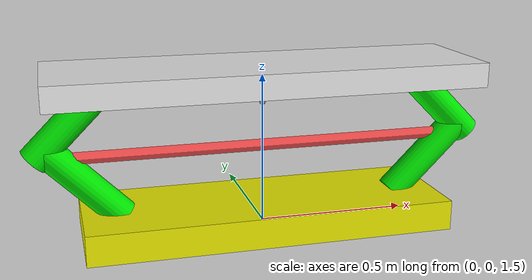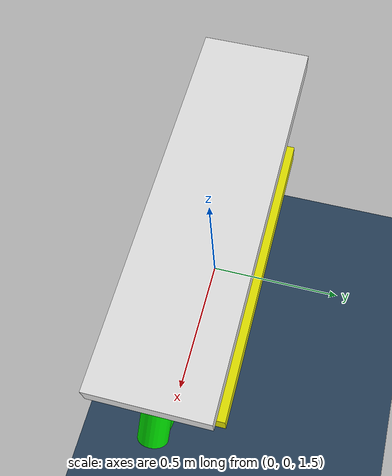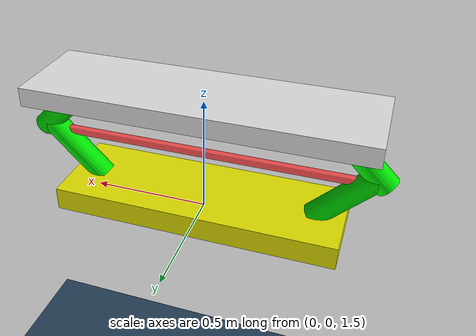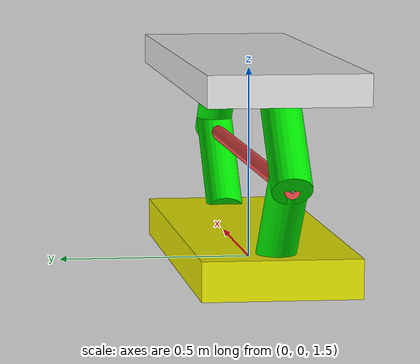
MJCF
<mujoco model="cassie scene">

    <include file="hopper2.xml"/>

    <statistic center="0 0 0.55" extent="1.1"/>

    <visual>
      <headlight diffuse="0.6 0.6 0.6" ambient="0.3 0.3 0.3" specular="0 0 0"/>
      <rgba haze="0.15 0.25 0.35 1"/>
      <global azimuth="150" elevation="-20"/>
    </visual>

    <asset>
      <texture type="skybox" builtin="gradient" rgb1="0.3 0.5 0.7" rgb2="0 0 0" width="512" height="3072"/>
      <texture type="2d" name="groundplane" builtin="checker" mark="edge" rgb1="0.2 0.3 0.4" rgb2="0.1 0.2 0.3"
        markrgb="0.8 0.8 0.8" width="300" height="300"/>
      <material name="groundplane" texture="groundplane" texuniform="true" texrepeat="5 5" reflectance="0.2"/>
    </asset>

    <worldbody>
      <light pos="0 0 3" dir="0 0 -1" directional="false"/>
      <geom name="floor" size="0 0 .125" type="plane" material="groundplane" conaffinity="15" condim="3"/>
    </worldbody>

  </mujoco>

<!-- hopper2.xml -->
<mujoco>
	<!-- 根据dsh提供的参数建模 -->
	<option timestep="0.001" integrator="RK4" gravity="0 0 -10">
		<flag sensornoise="enable" contact="enable" energy="enable" />
	</option>

	<statistic center="0 0 0.55" extent="1.1" />

	<visual>
		<headlight diffuse="0.6 0.6 0.6" ambient="0.3 0.3 0.3" specular="0 0 0" />
		<rgba haze="0.15 0.25 0.35 1" />
		<global azimuth="150" elevation="-20" />
	</visual>

	<worldbody>
		<light diffuse=".5 .5 .5" pos="0 0 3" dir="0 0 -1" />

		<body name="hopper" pos="0 0 2">
			<!-- 约束跳跃机器人只在x和z方向自由 -->
			<joint name="x" type="slide" pos="0 0 0" axis="1 0 0" />
			<joint name="z" type="slide" pos="0 0 0" axis="0 0 1" />
			<geom type="box" size=".7 .2 .04" rgba=".9 .9 .9 1" mass="0.5" />
			<site name="imu" size="0.01" pos="0 0 -0.09" />
			<body name="thigh_left" pos="-0.6179 0 -0.1179" euler="0 45 0">
				<joint name="hip_left" type="hinge" pos="0 0 0.1667" axis="0 -1 0" range="-45 45" limited="true"/>
				<geom type="cylinder" size=".05 .1667" rgba="0 .9 0 1" mass="0.5"/>
				<site name="s_left" pos="0 0 -0.1667" />
				<body name="leg_left" pos="0.1667 0 -0.1179" euler="0 -90 0">
					<joint name="knee_left" type="hinge" pos="0 0 0.1667" axis="0 -1 0" range="-45 45" limited="true"/>
					<geom type="cylinder" size=".05 .1667" rgba="0 .9 0 1" mass="0.5"/>
				</body>
			</body>
			<body name="thigh_right" pos="0.6179 0 -0.1179" euler="0 -45 0">
				<joint name="hip_right" type="hinge" pos="0 0 0.1667" axis="0 -1 0" range="-45 45" limited="true"/>
				<geom type="cylinder" size=".05 .1667" rgba="0 .9 0 1" mass="0.5"/>
				<site name="s_right" pos="0 0 -0.1667" />
				<body name="leg_right" pos="-0.1667 0 -0.1179" euler="0 90 0">
					<joint name="knee_right" type="hinge" pos="0 0 0.1667" axis="0 -1 0" range="-45 45" limited="true"/>
					<geom type="cylinder" size=".05 .1667" rgba="0 .9 0 1" mass="0.5"/>
				</body>
			</body>
		</body>
		<body name="foot" pos="0 0 1.5286">
			<freejoint />
			<geom type="box" size=".6 .2 .05" rgba=".9 .9 .0 1" mass="0.5" />
			<site name="foot_ground" pos="0 0 -0.055" />
		</body>
	</worldbody>

	<contact>
		<exclude name="e0" body1="hopper" body2="thigh_left" />
		<exclude name="e1" body1="hopper" body2="thigh_right" />
		<exclude name="e2" body1="thigh_left" body2="leg_left" />
		<exclude name="e3" body1="thigh_right" body2="leg_right" />
		<exclude name="e4" body1="leg_left" body2="foot" />
		<exclude name="e5" body1="leg_right" body2="foot" />
	</contact>

	<equality>
		<connect name="c1" body1="leg_left" body2="foot" anchor="0 0 -0.1667" />
		<connect name="c2" body1="leg_right" body2="foot" anchor="0 0 -0.1667" />
	</equality>

	<tendon>
		<spatial name='tendon1' range="0.1 10" limited="true" width=".02" rgba=".95 .3 .3 1"
			stiffness="500" damping="0.01" springlength="0.25 0.251">
			<site site="s_left" />
			<site site="s_right" />
		</spatial>
	</tendon>

	<actuator>
		<position name="pservo_hip_left" joint="hip_left" kp="200"/>
		<velocity name="vservo_hip_left" joint="hip_left" kv="100"/>
		<position name="pservo_hip_right" joint="hip_right" kp="200"/>
		<velocity name="vservo_hip_right" joint="hip_right" kv="100"/>

	</actuator>

	<sensor>
		<jointpos name="hip_pos_sensor" joint="hip_left" noise="0" />
		<jointvel name="hip_vel_sensor" joint="hip_left" noise="0" />
		<accelerometer name="acceleration_sensor" site="imu"/>
		<velocimeter  name="velocity_sensor" site="imu"/>
		<force name="ground_force_sensor" site="foot_ground"/>
	</sensor>

	<keyframe>
		<!-- 不设定时间默认每次都重新为0，所以只能用来做初始状态或者做动画，不能用于做仿真 -->
	</keyframe>
</mujoco>
